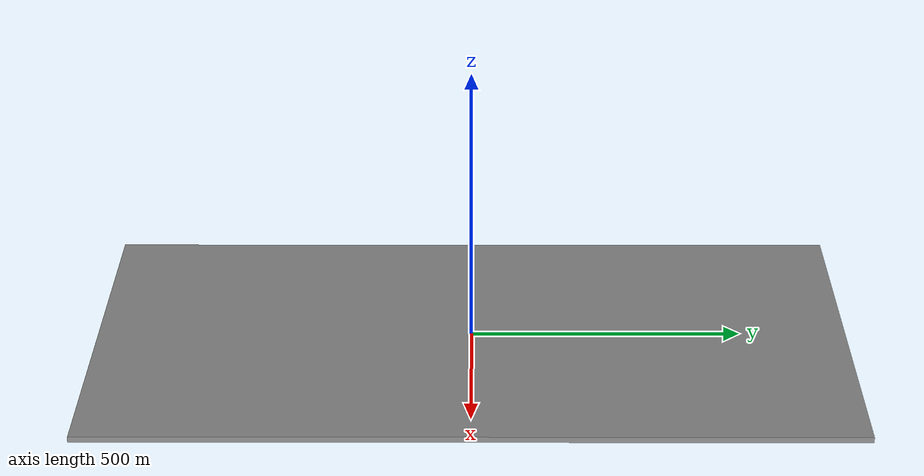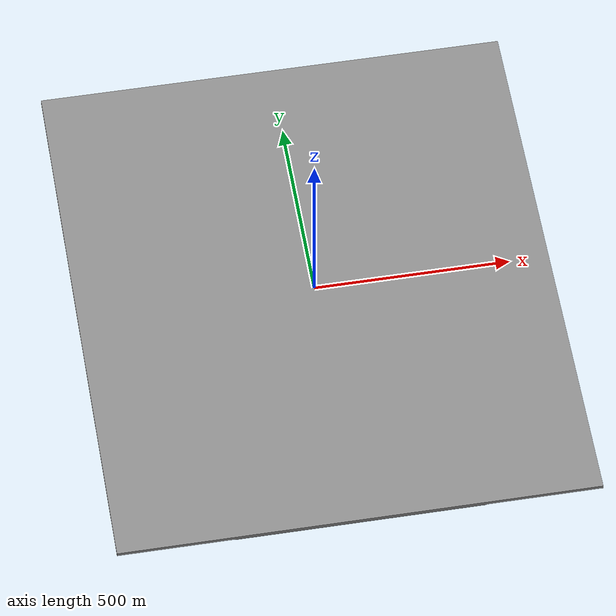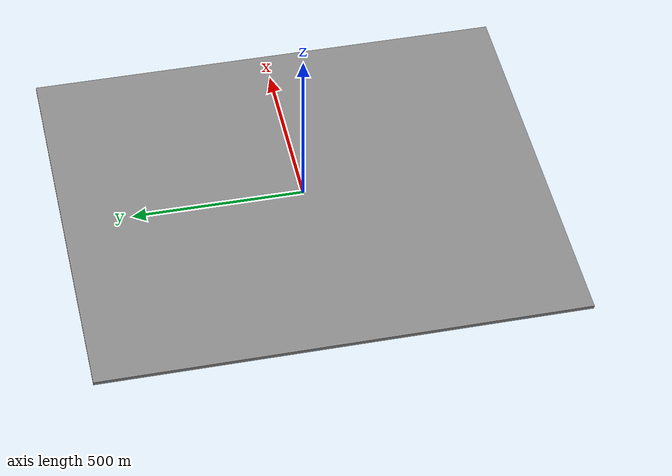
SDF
<?xml version="1.0" ?>
<sdf version="1.9">
  <model name="avian_terrain">
    <static>true</static>
    <pose>0 0 0 0 0 0</pose>
    <link name="link">
      <collision name="ENV_GROUND_PLANE_collision">
        <pose>0.000000 0.000000 -5.000000 0 0 0.000000</pose>
        <geometry>
          <box>
            <size>1200.000000 1400.000000 10.000000</size>
          </box>
        </geometry>
      </collision>
      <visual name="ENV_GROUND_PLANE_visual">
        <pose>0.000000 0.000000 -5.000000 0 0 0.000000</pose>
        <geometry>
          <box>
            <size>1200.000000 1400.000000 10.000000</size>
          </box>
        </geometry>
        <material>
          <ambient>0.220 0.220 0.220 1</ambient>
          <diffuse>0.550 0.550 0.550 1</diffuse>
          <specular>0.1 0.1 0.1 1</specular>
        </material>
      </visual>
      <collision name="ENV_WATER_SURFACE_collision">
        <pose>0.000000 0.000000 -7.000000 0 0 0.000000</pose>
        <geometry>
          <box>
            <size>620.000000 1400.000000 10.000000</size>
          </box>
        </geometry>
      </collision>
      <visual name="ENV_WATER_SURFACE_visual">
        <pose>0.000000 0.000000 -7.000000 0 0 0.000000</pose>
        <geometry>
          <box>
            <size>620.000000 1400.000000 10.000000</size>
          </box>
        </geometry>
        <material>
          <ambient>0.220 0.220 0.220 1</ambient>
          <diffuse>0.550 0.550 0.550 1</diffuse>
          <specular>0.1 0.1 0.1 1</specular>
        </material>
      </visual>
    </link>
  </model>
</sdf>
